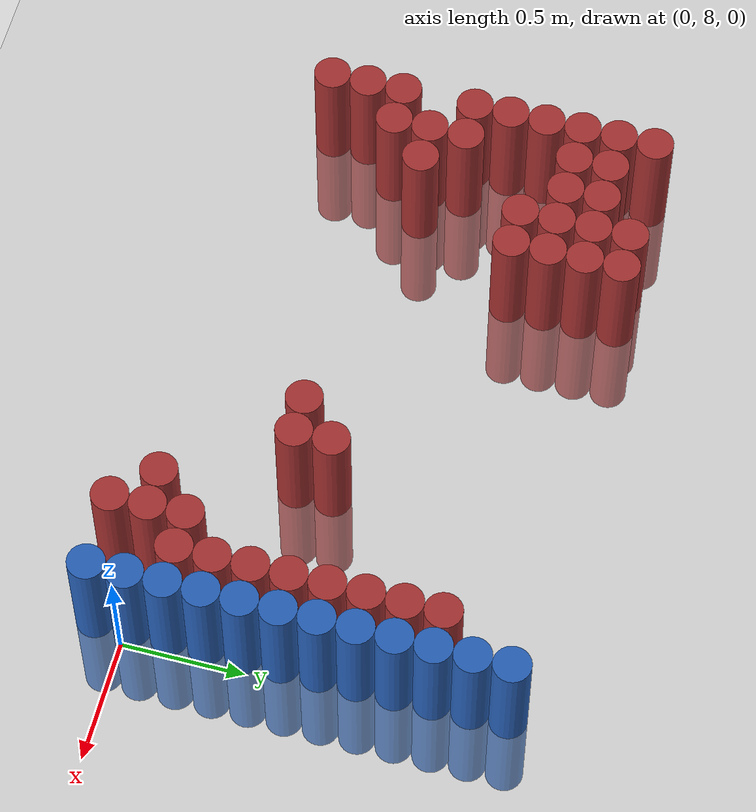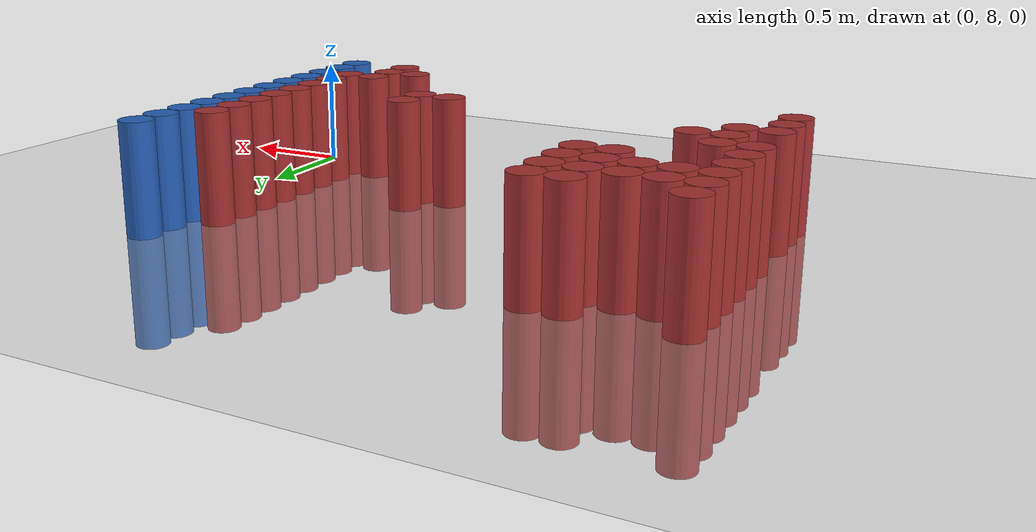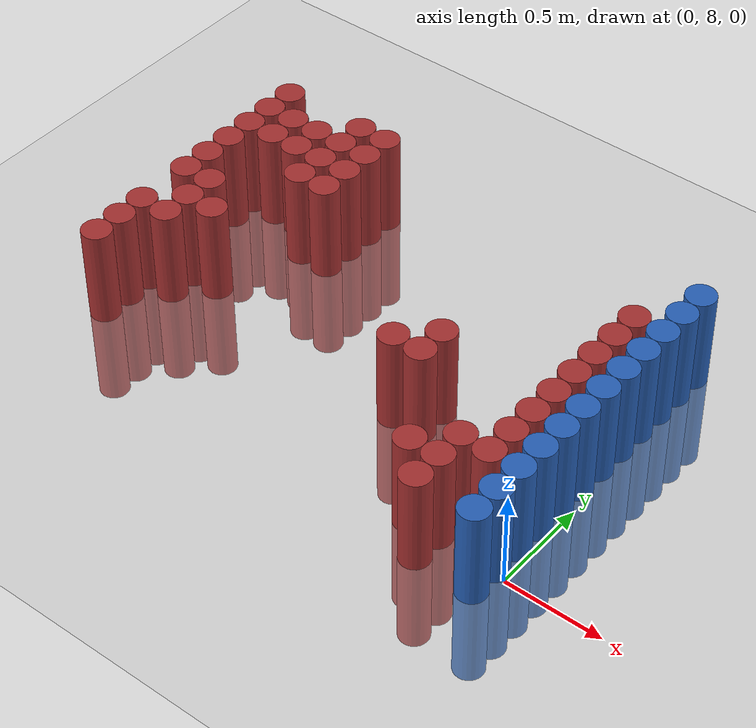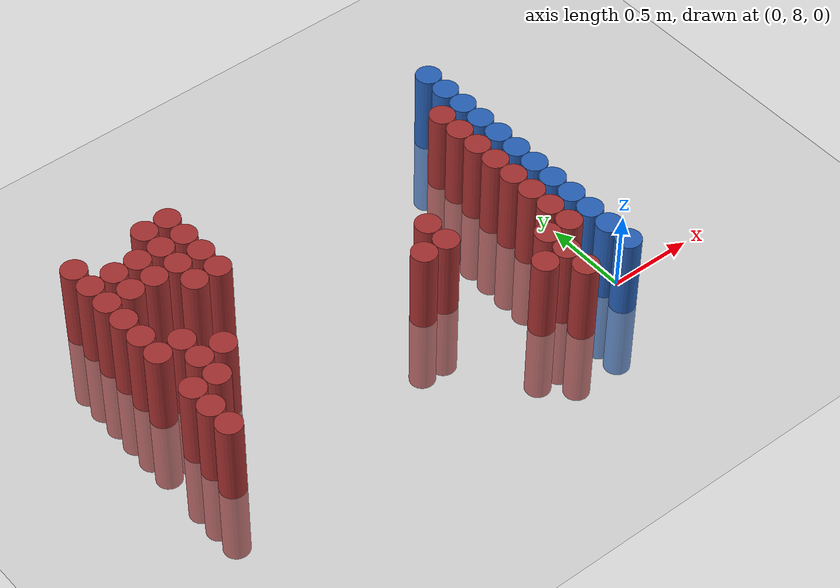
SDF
<sdf version="1.6">
 <world name="default">
  <model name="ground_plane">
   <static>1</static>
   <link name="link">
    <collision name="collision">
     <geometry><plane><normal>0 0 1</normal><size>100 100</size></plane></geometry>
     <surface><friction><ode><mu>100</mu><mu2>50</mu2></ode></friction></surface>
    </collision>
    <visual name="visual">
     <cast_shadows>0</cast_shadows>
     <geometry><plane><normal>0 0 1</normal><size>100 100</size></plane></geometry>
     <material>
      <script><uri>file://media/materials/scripts/gazebo.material</uri><name>Gazebo/Grey</name></script>
     </material>
    </visual>
   </link>
  </model>
  <model name="unit_cylinder_240">
   <static>1</static>
   <pose>-2.475000 8.175000 0.000000 0.000000 0.000000 0.000000</pose>
   <link name="link">
    <inertial>
     <mass>1</mass>
     <inertia><ixx>0.145833</ixx><ixy>0</ixy><ixz>0</ixz><iyy>0.145833</iyy><iyz>0</iyz><izz>0.125</izz></inertia>
    </inertial>
    <collision name="collision">
     <geometry><cylinder><radius>0.075000</radius><length>1</length></cylinder></geometry>
    </collision>
    <visual name="visual">
     <geometry><cylinder><radius>0.075000</radius><length>1</length></cylinder></geometry>
     <material>
      <ambient>0.648000 0.192000 0.192000 1</ambient>
      <diffuse>0.648000 0.192000 0.192000 1</diffuse>
     </material>
     <material>
      <script><name>Gazebo/Grey</name><uri>file://media/materials/scripts/gazebo.material</uri></script>
     </material>
    </visual>
   </link>
  </model>
  <model name="unit_cylinder_241">
   <static>1</static>
   <pose>-2.475000 8.325000 0.000000 0.000000 0.000000 0.000000</pose>
   <link name="link">
    <inertial>
     <mass>1</mass>
     <inertia><ixx>0.145833</ixx><ixy>0</ixy><ixz>0</ixz><iyy>0.145833</iyy><iyz>0</iyz><izz>0.125</izz></inertia>
    </inertial>
    <collision name="collision">
     <geometry><cylinder><radius>0.075000</radius><length>1</length></cylinder></geometry>
    </collision>
    <visual name="visual">
     <geometry><cylinder><radius>0.075000</radius><length>1</length></cylinder></geometry>
     <material>
      <ambient>0.648000 0.192000 0.192000 1</ambient>
      <diffuse>0.648000 0.192000 0.192000 1</diffuse>
     </material>
     <material>
      <script><name>Gazebo/Grey</name><uri>file://media/materials/scripts/gazebo.material</uri></script>
     </material>
    </visual>
   </link>
  </model>
  <model name="unit_cylinder_242">
   <static>1</static>
   <pose>-2.475000 8.475000 0.000000 0.000000 0.000000 0.000000</pose>
   <link name="link">
    <inertial>
     <mass>1</mass>
     <inertia><ixx>0.145833</ixx><ixy>0</ixy><ixz>0</ixz><iyy>0.145833</iyy><iyz>0</iyz><izz>0.125</izz></inertia>
    </inertial>
    <collision name="collision">
     <geometry><cylinder><radius>0.075000</radius><length>1</length></cylinder></geometry>
    </collision>
    <visual name="visual">
     <geometry><cylinder><radius>0.075000</radius><length>1</length></cylinder></geometry>
     <material>
      <ambient>0.648000 0.192000 0.192000 1</ambient>
      <diffuse>0.648000 0.192000 0.192000 1</diffuse>
     </material>
     <material>
      <script><name>Gazebo/Grey</name><uri>file://media/materials/scripts/gazebo.material</uri></script>
     </material>
    </visual>
   </link>
  </model>
  <model name="unit_cylinder_243">
   <static>1</static>
   <pose>-2.475000 8.775000 0.000000 0.000000 0.000000 0.000000</pose>
   <link name="link">
    <inertial>
     <mass>1</mass>
     <inertia><ixx>0.145833</ixx><ixy>0</ixy><ixz>0</ixz><iyy>0.145833</iyy><iyz>0</iyz><izz>0.125</izz></inertia>
    </inertial>
    <collision name="collision">
     <geometry><cylinder><radius>0.075000</radius><length>1</length></cylinder></geometry>
    </collision>
    <visual name="visual">
     <geometry><cylinder><radius>0.075000</radius><length>1</length></cylinder></geometry>
     <material>
      <ambient>0.648000 0.192000 0.192000 1</ambient>
      <diffuse>0.648000 0.192000 0.192000 1</diffuse>
     </material>
     <material>
      <script><name>Gazebo/Grey</name><uri>file://media/materials/scripts/gazebo.material</uri></script>
     </material>
    </visual>
   </link>
  </model>
  <model name="unit_cylinder_244">
   <static>1</static>
   <pose>-2.475000 8.925000 0.000000 0.000000 0.000000 0.000000</pose>
   <link name="link">
    <inertial>
     <mass>1</mass>
     <inertia><ixx>0.145833</ixx><ixy>0</ixy><ixz>0</ixz><iyy>0.145833</iyy><iyz>0</iyz><izz>0.125</izz></inertia>
    </inertial>
    <collision name="collision">
     <geometry><cylinder><radius>0.075000</radius><length>1</length></cylinder></geometry>
    </collision>
    <visual name="visual">
     <geometry><cylinder><radius>0.075000</radius><length>1</length></cylinder></geometry>
     <material>
      <ambient>0.648000 0.192000 0.192000 1</ambient>
      <diffuse>0.648000 0.192000 0.192000 1</diffuse>
     </material>
     <material>
      <script><name>Gazebo/Grey</name><uri>file://media/materials/scripts/gazebo.material</uri></script>
     </material>
    </visual>
   </link>
  </model>
  <model name="unit_cylinder_245">
   <static>1</static>
   <pose>-2.475000 9.075000 0.000000 0.000000 0.000000 0.000000</pose>
   <link name="link">
    <inertial>
     <mass>1</mass>
     <inertia><ixx>0.145833</ixx><ixy>0</ixy><ixz>0</ixz><iyy>0.145833</iyy><iyz>0</iyz><izz>0.125</izz></inertia>
    </inertial>
    <collision name="collision">
     <geometry><cylinder><radius>0.075000</radius><length>1</length></cylinder></geometry>
    </collision>
    <visual name="visual">
     <geometry><cylinder><radius>0.075000</radius><length>1</length></cylinder></geometry>
     <material>
      <ambient>0.648000 0.192000 0.192000 1</ambient>
      <diffuse>0.648000 0.192000 0.192000 1</diffuse>
     </material>
     <material>
      <script><name>Gazebo/Grey</name><uri>file://media/materials/scripts/gazebo.material</uri></script>
     </material>
    </visual>
   </link>
  </model>
  <model name="unit_cylinder_246">
   <static>1</static>
   <pose>-2.475000 9.225000 0.000000 0.000000 0.000000 0.000000</pose>
   <link name="link">
    <inertial>
     <mass>1</mass>
     <inertia><ixx>0.145833</ixx><ixy>0</ixy><ixz>0</ixz><iyy>0.145833</iyy><iyz>0</iyz><izz>0.125</izz></inertia>
    </inertial>
    <collision name="collision">
     <geometry><cylinder><radius>0.075000</radius><length>1</length></cylinder></geometry>
    </collision>
    <visual name="visual">
     <geometry><cylinder><radius>0.075000</radius><length>1</length></cylinder></geometry>
     <material>
      <ambient>0.648000 0.192000 0.192000 1</ambient>
      <diffuse>0.648000 0.192000 0.192000 1</diffuse>
     </material>
     <material>
      <script><name>Gazebo/Grey</name><uri>file://media/materials/scripts/gazebo.material</uri></script>
     </material>
    </visual>
   </link>
  </model>
  <model name="unit_cylinder_247">
   <static>1</static>
   <pose>-2.475000 9.375000 0.000000 0.000000 0.000000 0.000000</pose>
   <link name="link">
    <inertial>
     <mass>1</mass>
     <inertia><ixx>0.145833</ixx><ixy>0</ixy><ixz>0</ixz><iyy>0.145833</iyy><iyz>0</iyz><izz>0.125</izz></inertia>
    </inertial>
    <collision name="collision">
     <geometry><cylinder><radius>0.075000</radius><length>1</length></cylinder></geometry>
    </collision>
    <visual name="visual">
     <geometry><cylinder><radius>0.075000</radius><length>1</length></cylinder></geometry>
     <material>
      <ambient>0.648000 0.192000 0.192000 1</ambient>
      <diffuse>0.648000 0.192000 0.192000 1</diffuse>
     </material>
     <material>
      <script><name>Gazebo/Grey</name><uri>file://media/materials/scripts/gazebo.material</uri></script>
     </material>
    </visual>
   </link>
  </model>
  <model name="unit_cylinder_248">
   <static>1</static>
   <pose>-2.475000 9.525000 0.000000 0.000000 0.000000 0.000000</pose>
   <link name="link">
    <inertial>
     <mass>1</mass>
     <inertia><ixx>0.145833</ixx><ixy>0</ixy><ixz>0</ixz><iyy>0.145833</iyy><iyz>0</iyz><izz>0.125</izz></inertia>
    </inertial>
    <collision name="collision">
     <geometry><cylinder><radius>0.075000</radius><length>1</length></cylinder></geometry>
    </collision>
    <visual name="visual">
     <geometry><cylinder><radius>0.075000</radius><length>1</length></cylinder></geometry>
     <material>
      <ambient>0.648000 0.192000 0.192000 1</ambient>
      <diffuse>0.648000 0.192000 0.192000 1</diffuse>
     </material>
     <material>
      <script><name>Gazebo/Grey</name><uri>file://media/materials/scripts/gazebo.material</uri></script>
     </material>
    </visual>
   </link>
  </model>
  <model name="unit_cylinder_257">
   <static>1</static>
   <pose>-2.325000 8.475000 0.000000 0.000000 0.000000 0.000000</pose>
   <link name="link">
    <inertial>
     <mass>1</mass>
     <inertia><ixx>0.145833</ixx><ixy>0</ixy><ixz>0</ixz><iyy>0.145833</iyy><iyz>0</iyz><izz>0.125</izz></inertia>
    </inertial>
    <collision name="collision">
     <geometry><cylinder><radius>0.075000</radius><length>1</length></cylinder></geometry>
    </collision>
    <visual name="visual">
     <geometry><cylinder><radius>0.075000</radius><length>1</length></cylinder></geometry>
     <material>
      <ambient>0.648000 0.192000 0.192000 1</ambient>
      <diffuse>0.648000 0.192000 0.192000 1</diffuse>
     </material>
     <material>
      <script><name>Gazebo/Grey</name><uri>file://media/materials/scripts/gazebo.material</uri></script>
     </material>
    </visual>
   </link>
  </model>
  <model name="unit_cylinder_258">
   <static>1</static>
   <pose>-2.325000 8.625000 0.000000 0.000000 0.000000 0.000000</pose>
   <link name="link">
    <inertial>
     <mass>1</mass>
     <inertia><ixx>0.145833</ixx><ixy>0</ixy><ixz>0</ixz><iyy>0.145833</iyy><iyz>0</iyz><izz>0.125</izz></inertia>
    </inertial>
    <collision name="collision">
     <geometry><cylinder><radius>0.075000</radius><length>1</length></cylinder></geometry>
    </collision>
    <visual name="visual">
     <geometry><cylinder><radius>0.075000</radius><length>1</length></cylinder></geometry>
     <material>
      <ambient>0.648000 0.192000 0.192000 1</ambient>
      <diffuse>0.648000 0.192000 0.192000 1</diffuse>
     </material>
     <material>
      <script><name>Gazebo/Grey</name><uri>file://media/materials/scripts/gazebo.material</uri></script>
     </material>
    </visual>
   </link>
  </model>
  <model name="unit_cylinder_259">
   <static>1</static>
   <pose>-2.325000 8.775000 0.000000 0.000000 0.000000 0.000000</pose>
   <link name="link">
    <inertial>
     <mass>1</mass>
     <inertia><ixx>0.145833</ixx><ixy>0</ixy><ixz>0</ixz><iyy>0.145833</iyy><iyz>0</iyz><izz>0.125</izz></inertia>
    </inertial>
    <collision name="collision">
     <geometry><cylinder><radius>0.075000</radius><length>1</length></cylinder></geometry>
    </collision>
    <visual name="visual">
     <geometry><cylinder><radius>0.075000</radius><length>1</length></cylinder></geometry>
     <material>
      <ambient>0.648000 0.192000 0.192000 1</ambient>
      <diffuse>0.648000 0.192000 0.192000 1</diffuse>
     </material>
     <material>
      <script><name>Gazebo/Grey</name><uri>file://media/materials/scripts/gazebo.material</uri></script>
     </material>
    </visual>
   </link>
  </model>
  <model name="unit_cylinder_260">
   <static>1</static>
   <pose>-2.325000 9.225000 0.000000 0.000000 0.000000 0.000000</pose>
   <link name="link">
    <inertial>
     <mass>1</mass>
     <inertia><ixx>0.145833</ixx><ixy>0</ixy><ixz>0</ixz><iyy>0.145833</iyy><iyz>0</iyz><izz>0.125</izz></inertia>
    </inertial>
    <collision name="collision">
     <geometry><cylinder><radius>0.075000</radius><length>1</length></cylinder></geometry>
    </collision>
    <visual name="visual">
     <geometry><cylinder><radius>0.075000</radius><length>1</length></cylinder></geometry>
     <material>
      <ambient>0.648000 0.192000 0.192000 1</ambient>
      <diffuse>0.648000 0.192000 0.192000 1</diffuse>
     </material>
     <material>
      <script><name>Gazebo/Grey</name><uri>file://media/materials/scripts/gazebo.material</uri></script>
     </material>
    </visual>
   </link>
  </model>
  <model name="unit_cylinder_261">
   <static>1</static>
   <pose>-2.325000 9.375000 0.000000 0.000000 0.000000 0.000000</pose>
   <link name="link">
    <inertial>
     <mass>1</mass>
     <inertia><ixx>0.145833</ixx><ixy>0</ixy><ixz>0</ixz><iyy>0.145833</iyy><iyz>0</iyz><izz>0.125</izz></inertia>
    </inertial>
    <collision name="collision">
     <geometry><cylinder><radius>0.075000</radius><length>1</length></cylinder></geometry>
    </collision>
    <visual name="visual">
     <geometry><cylinder><radius>0.075000</radius><length>1</length></cylinder></geometry>
     <material>
      <ambient>0.648000 0.192000 0.192000 1</ambient>
      <diffuse>0.648000 0.192000 0.192000 1</diffuse>
     </material>
     <material>
      <script><name>Gazebo/Grey</name><uri>file://media/materials/scripts/gazebo.material</uri></script>
     </material>
    </visual>
   </link>
  </model>
  <model name="unit_cylinder_270">
   <static>1</static>
   <pose>-2.175000 8.625000 0.000000 0.000000 0.000000 0.000000</pose>
   <link name="link">
    <inertial>
     <mass>1</mass>
     <inertia><ixx>0.145833</ixx><ixy>0</ixy><ixz>0</ixz><iyy>0.145833</iyy><iyz>0</iyz><izz>0.125</izz></inertia>
    </inertial>
    <collision name="collision">
     <geometry><cylinder><radius>0.075000</radius><length>1</length></cylinder></geometry>
    </collision>
    <visual name="visual">
     <geometry><cylinder><radius>0.075000</radius><length>1</length></cylinder></geometry>
     <material>
      <ambient>0.648000 0.192000 0.192000 1</ambient>
      <diffuse>0.648000 0.192000 0.192000 1</diffuse>
     </material>
     <material>
      <script><name>Gazebo/Grey</name><uri>file://media/materials/scripts/gazebo.material</uri></script>
     </material>
    </visual>
   </link>
  </model>
  <model name="unit_cylinder_271">
   <static>1</static>
   <pose>-2.175000 9.225000 0.000000 0.000000 0.000000 0.000000</pose>
   <link name="link">
    <inertial>
     <mass>1</mass>
     <inertia><ixx>0.145833</ixx><ixy>0</ixy><ixz>0</ixz><iyy>0.145833</iyy><iyz>0</iyz><izz>0.125</izz></inertia>
    </inertial>
    <collision name="collision">
     <geometry><cylinder><radius>0.075000</radius><length>1</length></cylinder></geometry>
    </collision>
    <visual name="visual">
     <geometry><cylinder><radius>0.075000</radius><length>1</length></cylinder></geometry>
     <material>
      <ambient>0.648000 0.192000 0.192000 1</ambient>
      <diffuse>0.648000 0.192000 0.192000 1</diffuse>
     </material>
     <material>
      <script><name>Gazebo/Grey</name><uri>file://media/materials/scripts/gazebo.material</uri></script>
     </material>
    </visual>
   </link>
  </model>
  <model name="unit_cylinder_272">
   <static>1</static>
   <pose>-2.175000 9.375000 0.000000 0.000000 0.000000 0.000000</pose>
   <link name="link">
    <inertial>
     <mass>1</mass>
     <inertia><ixx>0.145833</ixx><ixy>0</ixy><ixz>0</ixz><iyy>0.145833</iyy><iyz>0</iyz><izz>0.125</izz></inertia>
    </inertial>
    <collision name="collision">
     <geometry><cylinder><radius>0.075000</radius><length>1</length></cylinder></geometry>
    </collision>
    <visual name="visual">
     <geometry><cylinder><radius>0.075000</radius><length>1</length></cylinder></geometry>
     <material>
      <ambient>0.648000 0.192000 0.192000 1</ambient>
      <diffuse>0.648000 0.192000 0.192000 1</diffuse>
     </material>
     <material>
      <script><name>Gazebo/Grey</name><uri>file://media/materials/scripts/gazebo.material</uri></script>
     </material>
    </visual>
   </link>
  </model>
  <model name="unit_cylinder_280">
   <static>1</static>
   <pose>-2.025000 9.075000 0.000000 0.000000 0.000000 0.000000</pose>
   <link name="link">
    <inertial>
     <mass>1</mass>
     <inertia><ixx>0.145833</ixx><ixy>0</ixy><ixz>0</ixz><iyy>0.145833</iyy><iyz>0</iyz><izz>0.125</izz></inertia>
    </inertial>
    <collision name="collision">
     <geometry><cylinder><radius>0.075000</radius><length>1</length></cylinder></geometry>
    </collision>
    <visual name="visual">
     <geometry><cylinder><radius>0.075000</radius><length>1</length></cylinder></geometry>
     <material>
      <ambient>0.648000 0.192000 0.192000 1</ambient>
      <diffuse>0.648000 0.192000 0.192000 1</diffuse>
     </material>
     <material>
      <script><name>Gazebo/Grey</name><uri>file://media/materials/scripts/gazebo.material</uri></script>
     </material>
    </visual>
   </link>
  </model>
  <model name="unit_cylinder_281">
   <static>1</static>
   <pose>-2.025000 9.225000 0.000000 0.000000 0.000000 0.000000</pose>
   <link name="link">
    <inertial>
     <mass>1</mass>
     <inertia><ixx>0.145833</ixx><ixy>0</ixy><ixz>0</ixz><iyy>0.145833</iyy><iyz>0</iyz><izz>0.125</izz></inertia>
    </inertial>
    <collision name="collision">
     <geometry><cylinder><radius>0.075000</radius><length>1</length></cylinder></geometry>
    </collision>
    <visual name="visual">
     <geometry><cylinder><radius>0.075000</radius><length>1</length></cylinder></geometry>
     <material>
      <ambient>0.648000 0.192000 0.192000 1</ambient>
      <diffuse>0.648000 0.192000 0.192000 1</diffuse>
     </material>
     <material>
      <script><name>Gazebo/Grey</name><uri>file://media/materials/scripts/gazebo.material</uri></script>
     </material>
    </visual>
   </link>
  </model>
  <model name="unit_cylinder_282">
   <static>1</static>
   <pose>-2.025000 9.375000 0.000000 0.000000 0.000000 0.000000</pose>
   <link name="link">
    <inertial>
     <mass>1</mass>
     <inertia><ixx>0.145833</ixx><ixy>0</ixy><ixz>0</ixz><iyy>0.145833</iyy><iyz>0</iyz><izz>0.125</izz></inertia>
    </inertial>
    <collision name="collision">
     <geometry><cylinder><radius>0.075000</radius><length>1</length></cylinder></geometry>
    </collision>
    <visual name="visual">
     <geometry><cylinder><radius>0.075000</radius><length>1</length></cylinder></geometry>
     <material>
      <ambient>0.648000 0.192000 0.192000 1</ambient>
      <diffuse>0.648000 0.192000 0.192000 1</diffuse>
     </material>
     <material>
      <script><name>Gazebo/Grey</name><uri>file://media/materials/scripts/gazebo.material</uri></script>
     </material>
    </visual>
   </link>
  </model>
  <model name="unit_cylinder_283">
   <static>1</static>
   <pose>-2.025000 9.525000 0.000000 0.000000 0.000000 0.000000</pose>
   <link name="link">
    <inertial>
     <mass>1</mass>
     <inertia><ixx>0.145833</ixx><ixy>0</ixy><ixz>0</ixz><iyy>0.145833</iyy><iyz>0</iyz><izz>0.125</izz></inertia>
    </inertial>
    <collision name="collision">
     <geometry><cylinder><radius>0.075000</radius><length>1</length></cylinder></geometry>
    </collision>
    <visual name="visual">
     <geometry><cylinder><radius>0.075000</radius><length>1</length></cylinder></geometry>
     <material>
      <ambient>0.648000 0.192000 0.192000 1</ambient>
      <diffuse>0.648000 0.192000 0.192000 1</diffuse>
     </material>
     <material>
      <script><name>Gazebo/Grey</name><uri>file://media/materials/scripts/gazebo.material</uri></script>
     </material>
    </visual>
   </link>
  </model>
  <model name="unit_cylinder_290">
   <static>1</static>
   <pose>-1.875000 9.075000 0.000000 0.000000 0.000000 0.000000</pose>
   <link name="link">
    <inertial>
     <mass>1</mass>
     <inertia><ixx>0.145833</ixx><ixy>0</ixy><ixz>0</ixz><iyy>0.145833</iyy><iyz>0</iyz><izz>0.125</izz></inertia>
    </inertial>
    <collision name="collision">
     <geometry><cylinder><radius>0.075000</radius><length>1</length></cylinder></geometry>
    </collision>
    <visual name="visual">
     <geometry><cylinder><radius>0.075000</radius><length>1</length></cylinder></geometry>
     <material>
      <ambient>0.648000 0.192000 0.192000 1</ambient>
      <diffuse>0.648000 0.192000 0.192000 1</diffuse>
     </material>
     <material>
      <script><name>Gazebo/Grey</name><uri>file://media/materials/scripts/gazebo.material</uri></script>
     </material>
    </visual>
   </link>
  </model>
  <model name="unit_cylinder_291">
   <static>1</static>
   <pose>-1.875000 9.225000 0.000000 0.000000 0.000000 0.000000</pose>
   <link name="link">
    <inertial>
     <mass>1</mass>
     <inertia><ixx>0.145833</ixx><ixy>0</ixy><ixz>0</ixz><iyy>0.145833</iyy><iyz>0</iyz><izz>0.125</izz></inertia>
    </inertial>
    <collision name="collision">
     <geometry><cylinder><radius>0.075000</radius><length>1</length></cylinder></geometry>
    </collision>
    <visual name="visual">
     <geometry><cylinder><radius>0.075000</radius><length>1</length></cylinder></geometry>
     <material>
      <ambient>0.648000 0.192000 0.192000 1</ambient>
      <diffuse>0.648000 0.192000 0.192000 1</diffuse>
     </material>
     <material>
      <script><name>Gazebo/Grey</name><uri>file://media/materials/scripts/gazebo.material</uri></script>
     </material>
    </visual>
   </link>
  </model>
  <model name="unit_cylinder_292">
   <static>1</static>
   <pose>-1.875000 9.375000 0.000000 0.000000 0.000000 0.000000</pose>
   <link name="link">
    <inertial>
     <mass>1</mass>
     <inertia><ixx>0.145833</ixx><ixy>0</ixy><ixz>0</ixz><iyy>0.145833</iyy><iyz>0</iyz><izz>0.125</izz></inertia>
    </inertial>
    <collision name="collision">
     <geometry><cylinder><radius>0.075000</radius><length>1</length></cylinder></geometry>
    </collision>
    <visual name="visual">
     <geometry><cylinder><radius>0.075000</radius><length>1</length></cylinder></geometry>
     <material>
      <ambient>0.648000 0.192000 0.192000 1</ambient>
      <diffuse>0.648000 0.192000 0.192000 1</diffuse>
     </material>
     <material>
      <script><name>Gazebo/Grey</name><uri>file://media/materials/scripts/gazebo.material</uri></script>
     </material>
    </visual>
   </link>
  </model>
  <model name="unit_cylinder_293">
   <static>1</static>
   <pose>-1.875000 9.525000 0.000000 0.000000 0.000000 0.000000</pose>
   <link name="link">
    <inertial>
     <mass>1</mass>
     <inertia><ixx>0.145833</ixx><ixy>0</ixy><ixz>0</ixz><iyy>0.145833</iyy><iyz>0</iyz><izz>0.125</izz></inertia>
    </inertial>
    <collision name="collision">
     <geometry><cylinder><radius>0.075000</radius><length>1</length></cylinder></geometry>
    </collision>
    <visual name="visual">
     <geometry><cylinder><radius>0.075000</radius><length>1</length></cylinder></geometry>
     <material>
      <ambient>0.648000 0.192000 0.192000 1</ambient>
      <diffuse>0.648000 0.192000 0.192000 1</diffuse>
     </material>
     <material>
      <script><name>Gazebo/Grey</name><uri>file://media/materials/scripts/gazebo.material</uri></script>
     </material>
    </visual>
   </link>
  </model>
  <model name="unit_cylinder_296">
   <static>1</static>
   <pose>-0.975000 8.475000 0.000000 0.000000 0.000000 0.000000</pose>
   <link name="link">
    <inertial>
     <mass>1</mass>
     <inertia><ixx>0.145833</ixx><ixy>0</ixy><ixz>0</ixz><iyy>0.145833</iyy><iyz>0</iyz><izz>0.125</izz></inertia>
    </inertial>
    <collision name="collision">
     <geometry><cylinder><radius>0.075000</radius><length>1</length></cylinder></geometry>
    </collision>
    <visual name="visual">
     <geometry><cylinder><radius>0.075000</radius><length>1</length></cylinder></geometry>
     <material>
      <ambient>0.648000 0.192000 0.192000 1</ambient>
      <diffuse>0.648000 0.192000 0.192000 1</diffuse>
     </material>
     <material>
      <script><name>Gazebo/Grey</name><uri>file://media/materials/scripts/gazebo.material</uri></script>
     </material>
    </visual>
   </link>
  </model>
  <model name="unit_cylinder_299">
   <static>1</static>
   <pose>-0.825000 8.475000 0.000000 0.000000 0.000000 0.000000</pose>
   <link name="link">
    <inertial>
     <mass>1</mass>
     <inertia><ixx>0.145833</ixx><ixy>0</ixy><ixz>0</ixz><iyy>0.145833</iyy><iyz>0</iyz><izz>0.125</izz></inertia>
    </inertial>
    <collision name="collision">
     <geometry><cylinder><radius>0.075000</radius><length>1</length></cylinder></geometry>
    </collision>
    <visual name="visual">
     <geometry><cylinder><radius>0.075000</radius><length>1</length></cylinder></geometry>
     <material>
      <ambient>0.648000 0.192000 0.192000 1</ambient>
      <diffuse>0.648000 0.192000 0.192000 1</diffuse>
     </material>
     <material>
      <script><name>Gazebo/Grey</name><uri>file://media/materials/scripts/gazebo.material</uri></script>
     </material>
    </visual>
   </link>
  </model>
  <model name="unit_cylinder_300">
   <static>1</static>
   <pose>-0.825000 8.625000 0.000000 0.000000 0.000000 0.000000</pose>
   <link name="link">
    <inertial>
     <mass>1</mass>
     <inertia><ixx>0.145833</ixx><ixy>0</ixy><ixz>0</ixz><iyy>0.145833</iyy><iyz>0</iyz><izz>0.125</izz></inertia>
    </inertial>
    <collision name="collision">
     <geometry><cylinder><radius>0.075000</radius><length>1</length></cylinder></geometry>
    </collision>
    <visual name="visual">
     <geometry><cylinder><radius>0.075000</radius><length>1</length></cylinder></geometry>
     <material>
      <ambient>0.648000 0.192000 0.192000 1</ambient>
      <diffuse>0.648000 0.192000 0.192000 1</diffuse>
     </material>
     <material>
      <script><name>Gazebo/Grey</name><uri>file://media/materials/scripts/gazebo.material</uri></script>
     </material>
    </visual>
   </link>
  </model>
  <model name="unit_cylinder_309">
   <static>1</static>
   <pose>-0.525000 8.025000 0.000000 0.000000 0.000000 0.000000</pose>
   <link name="link">
    <inertial>
     <mass>1</mass>
     <inertia><ixx>0.145833</ixx><ixy>0</ixy><ixz>0</ixz><iyy>0.145833</iyy><iyz>0</iyz><izz>0.125</izz></inertia>
    </inertial>
    <collision name="collision">
     <geometry><cylinder><radius>0.075000</radius><length>1</length></cylinder></geometry>
    </collision>
    <visual name="visual">
     <geometry><cylinder><radius>0.075000</radius><length>1</length></cylinder></geometry>
     <material>
      <ambient>0.648000 0.192000 0.192000 1</ambient>
      <diffuse>0.648000 0.192000 0.192000 1</diffuse>
     </material>
     <material>
      <script><name>Gazebo/Grey</name><uri>file://media/materials/scripts/gazebo.material</uri></script>
     </material>
    </visual>
   </link>
  </model>
  <model name="unit_cylinder_316">
   <static>1</static>
   <pose>-0.375000 7.875000 0.000000 0.000000 0.000000 0.000000</pose>
   <link name="link">
    <inertial>
     <mass>1</mass>
     <inertia><ixx>0.145833</ixx><ixy>0</ixy><ixz>0</ixz><iyy>0.145833</iyy><iyz>0</iyz><izz>0.125</izz></inertia>
    </inertial>
    <collision name="collision">
     <geometry><cylinder><radius>0.075000</radius><length>1</length></cylinder></geometry>
    </collision>
    <visual name="visual">
     <geometry><cylinder><radius>0.075000</radius><length>1</length></cylinder></geometry>
     <material>
      <ambient>0.648000 0.192000 0.192000 1</ambient>
      <diffuse>0.648000 0.192000 0.192000 1</diffuse>
     </material>
     <material>
      <script><name>Gazebo/Grey</name><uri>file://media/materials/scripts/gazebo.material</uri></script>
     </material>
    </visual>
   </link>
  </model>
  <model name="unit_cylinder_317">
   <static>1</static>
   <pose>-0.375000 8.025000 0.000000 0.000000 0.000000 0.000000</pose>
   <link name="link">
    <inertial>
     <mass>1</mass>
     <inertia><ixx>0.145833</ixx><ixy>0</ixy><ixz>0</ixz><iyy>0.145833</iyy><iyz>0</iyz><izz>0.125</izz></inertia>
    </inertial>
    <collision name="collision">
     <geometry><cylinder><radius>0.075000</radius><length>1</length></cylinder></geometry>
    </collision>
    <visual name="visual">
     <geometry><cylinder><radius>0.075000</radius><length>1</length></cylinder></geometry>
     <material>
      <ambient>0.648000 0.192000 0.192000 1</ambient>
      <diffuse>0.648000 0.192000 0.192000 1</diffuse>
     </material>
     <material>
      <script><name>Gazebo/Grey</name><uri>file://media/materials/scripts/gazebo.material</uri></script>
     </material>
    </visual>
   </link>
  </model>
  <model name="unit_cylinder_318">
   <static>1</static>
   <pose>-0.375000 8.175000 0.000000 0.000000 0.000000 0.000000</pose>
   <link name="link">
    <inertial>
     <mass>1</mass>
     <inertia><ixx>0.145833</ixx><ixy>0</ixy><ixz>0</ixz><iyy>0.145833</iyy><iyz>0</iyz><izz>0.125</izz></inertia>
    </inertial>
    <collision name="collision">
     <geometry><cylinder><radius>0.075000</radius><length>1</length></cylinder></geometry>
    </collision>
    <visual name="visual">
     <geometry><cylinder><radius>0.075000</radius><length>1</length></cylinder></geometry>
     <material>
      <ambient>0.648000 0.192000 0.192000 1</ambient>
      <diffuse>0.648000 0.192000 0.192000 1</diffuse>
     </material>
     <material>
      <script><name>Gazebo/Grey</name><uri>file://media/materials/scripts/gazebo.material</uri></script>
     </material>
    </visual>
   </link>
  </model>
  <model name="unit_cylinder_327">
   <static>1</static>
   <pose>-0.225000 8.175000 0.000000 0.000000 0.000000 0.000000</pose>
   <link name="link">
    <inertial>
     <mass>1</mass>
     <inertia><ixx>0.145833</ixx><ixy>0</ixy><ixz>0</ixz><iyy>0.145833</iyy><iyz>0</iyz><izz>0.125</izz></inertia>
    </inertial>
    <collision name="collision">
     <geometry><cylinder><radius>0.075000</radius><length>1</length></cylinder></geometry>
    </collision>
    <visual name="visual">
     <geometry><cylinder><radius>0.075000</radius><length>1</length></cylinder></geometry>
     <material>
      <ambient>0.648000 0.192000 0.192000 1</ambient>
      <diffuse>0.648000 0.192000 0.192000 1</diffuse>
     </material>
     <material>
      <script><name>Gazebo/Grey</name><uri>file://media/materials/scripts/gazebo.material</uri></script>
     </material>
    </visual>
   </link>
  </model>
  <model name="unit_cylinder_328">
   <static>1</static>
   <pose>-0.225000 8.325000 0.000000 0.000000 0.000000 0.000000</pose>
   <link name="link">
    <inertial>
     <mass>1</mass>
     <inertia><ixx>0.145833</ixx><ixy>0</ixy><ixz>0</ixz><iyy>0.145833</iyy><iyz>0</iyz><izz>0.125</izz></inertia>
    </inertial>
    <collision name="collision">
     <geometry><cylinder><radius>0.075000</radius><length>1</length></cylinder></geometry>
    </collision>
    <visual name="visual">
     <geometry><cylinder><radius>0.075000</radius><length>1</length></cylinder></geometry>
     <material>
      <ambient>0.648000 0.192000 0.192000 1</ambient>
      <diffuse>0.648000 0.192000 0.192000 1</diffuse>
     </material>
     <material>
      <script><name>Gazebo/Grey</name><uri>file://media/materials/scripts/gazebo.material</uri></script>
     </material>
    </visual>
   </link>
  </model>
  <model name="unit_cylinder_329">
   <static>1</static>
   <pose>-0.225000 8.475000 0.000000 0.000000 0.000000 0.000000</pose>
   <link name="link">
    <inertial>
     <mass>1</mass>
     <inertia><ixx>0.145833</ixx><ixy>0</ixy><ixz>0</ixz><iyy>0.145833</iyy><iyz>0</iyz><izz>0.125</izz></inertia>
    </inertial>
    <collision name="collision">
     <geometry><cylinder><radius>0.075000</radius><length>1</length></cylinder></geometry>
    </collision>
    <visual name="visual">
     <geometry><cylinder><radius>0.075000</radius><length>1</length></cylinder></geometry>
     <material>
      <ambient>0.648000 0.192000 0.192000 1</ambient>
      <diffuse>0.648000 0.192000 0.192000 1</diffuse>
     </material>
     <material>
      <script><name>Gazebo/Grey</name><uri>file://media/materials/scripts/gazebo.material</uri></script>
     </material>
    </visual>
   </link>
  </model>
  <model name="unit_cylinder_330">
   <static>1</static>
   <pose>-0.225000 8.625000 0.000000 0.000000 0.000000 0.000000</pose>
   <link name="link">
    <inertial>
     <mass>1</mass>
     <inertia><ixx>0.145833</ixx><ixy>0</ixy><ixz>0</ixz><iyy>0.145833</iyy><iyz>0</iyz><izz>0.125</izz></inertia>
    </inertial>
    <collision name="collision">
     <geometry><cylinder><radius>0.075000</radius><length>1</length></cylinder></geometry>
    </collision>
    <visual name="visual">
     <geometry><cylinder><radius>0.075000</radius><length>1</length></cylinder></geometry>
     <material>
      <ambient>0.648000 0.192000 0.192000 1</ambient>
      <diffuse>0.648000 0.192000 0.192000 1</diffuse>
     </material>
     <material>
      <script><name>Gazebo/Grey</name><uri>file://media/materials/scripts/gazebo.material</uri></script>
     </material>
    </visual>
   </link>
  </model>
  <model name="unit_cylinder_331">
   <static>1</static>
   <pose>-0.225000 8.775000 0.000000 0.000000 0.000000 0.000000</pose>
   <link name="link">
    <inertial>
     <mass>1</mass>
     <inertia><ixx>0.145833</ixx><ixy>0</ixy><ixz>0</ixz><iyy>0.145833</iyy><iyz>0</iyz><izz>0.125</izz></inertia>
    </inertial>
    <collision name="collision">
     <geometry><cylinder><radius>0.075000</radius><length>1</length></cylinder></geometry>
    </collision>
    <visual name="visual">
     <geometry><cylinder><radius>0.075000</radius><length>1</length></cylinder></geometry>
     <material>
      <ambient>0.648000 0.192000 0.192000 1</ambient>
      <diffuse>0.648000 0.192000 0.192000 1</diffuse>
     </material>
     <material>
      <script><name>Gazebo/Grey</name><uri>file://media/materials/scripts/gazebo.material</uri></script>
     </material>
    </visual>
   </link>
  </model>
  <model name="unit_cylinder_332">
   <static>1</static>
   <pose>-0.225000 8.925000 0.000000 0.000000 0.000000 0.000000</pose>
   <link name="link">
    <inertial>
     <mass>1</mass>
     <inertia><ixx>0.145833</ixx><ixy>0</ixy><ixz>0</ixz><iyy>0.145833</iyy><iyz>0</iyz><izz>0.125</izz></inertia>
    </inertial>
    <collision name="collision">
     <geometry><cylinder><radius>0.075000</radius><length>1</length></cylinder></geometry>
    </collision>
    <visual name="visual">
     <geometry><cylinder><radius>0.075000</radius><length>1</length></cylinder></geometry>
     <material>
      <ambient>0.648000 0.192000 0.192000 1</ambient>
      <diffuse>0.648000 0.192000 0.192000 1</diffuse>
     </material>
     <material>
      <script><name>Gazebo/Grey</name><uri>file://media/materials/scripts/gazebo.material</uri></script>
     </material>
    </visual>
   </link>
  </model>
  <model name="unit_cylinder_333">
   <static>1</static>
   <pose>-0.225000 9.075000 0.000000 0.000000 0.000000 0.000000</pose>
   <link name="link">
    <inertial>
     <mass>1</mass>
     <inertia><ixx>0.145833</ixx><ixy>0</ixy><ixz>0</ixz><iyy>0.145833</iyy><iyz>0</iyz><izz>0.125</izz></inertia>
    </inertial>
    <collision name="collision">
     <geometry><cylinder><radius>0.075000</radius><length>1</length></cylinder></geometry>
    </collision>
    <visual name="visual">
     <geometry><cylinder><radius>0.075000</radius><length>1</length></cylinder></geometry>
     <material>
      <ambient>0.648000 0.192000 0.192000 1</ambient>
      <diffuse>0.648000 0.192000 0.192000 1</diffuse>
     </material>
     <material>
      <script><name>Gazebo/Grey</name><uri>file://media/materials/scripts/gazebo.material</uri></script>
     </material>
    </visual>
   </link>
  </model>
  <model name="unit_cylinder_334">
   <static>1</static>
   <pose>-0.225000 9.225000 0.000000 0.000000 0.000000 0.000000</pose>
   <link name="link">
    <inertial>
     <mass>1</mass>
     <inertia><ixx>0.145833</ixx><ixy>0</ixy><ixz>0</ixz><iyy>0.145833</iyy><iyz>0</iyz><izz>0.125</izz></inertia>
    </inertial>
    <collision name="collision">
     <geometry><cylinder><radius>0.075000</radius><length>1</length></cylinder></geometry>
    </collision>
    <visual name="visual">
     <geometry><cylinder><radius>0.075000</radius><length>1</length></cylinder></geometry>
     <material>
      <ambient>0.648000 0.192000 0.192000 1</ambient>
      <diffuse>0.648000 0.192000 0.192000 1</diffuse>
     </material>
     <material>
      <script><name>Gazebo/Grey</name><uri>file://media/materials/scripts/gazebo.material</uri></script>
     </material>
    </visual>
   </link>
  </model>
  <model name="unit_cylinder_353">
   <static>1</static>
   <pose>-0.075000 7.875000 0.000000 0.000000 0.000000 0.000000</pose>
   <link name="link">
    <inertial>
     <mass>1</mass>
     <inertia><ixx>0.145833</ixx><ixy>0</ixy><ixz>0</ixz><iyy>0.145833</iyy><iyz>0</iyz><izz>0.125</izz></inertia>
    </inertial>
    <collision name="collision">
     <geometry><cylinder><radius>0.075000</radius><length>1</length></cylinder></geometry>
    </collision>
    <visual name="visual">
     <geometry><cylinder><radius>0.075000</radius><length>1</length></cylinder></geometry>
     <material>
      <ambient>0.152000 0.379000 0.720000 1</ambient>
      <diffuse>0.152000 0.379000 0.720000 1</diffuse>
     </material>
     <material>
      <script><name>Gazebo/Grey</name><uri>file://media/materials/scripts/gazebo.material</uri></script>
     </material>
    </visual>
   </link>
  </model>
  <model name="unit_cylinder_354">
   <static>1</static>
   <pose>-0.075000 8.025000 0.000000 0.000000 0.000000 0.000000</pose>
   <link name="link">
    <inertial>
     <mass>1</mass>
     <inertia><ixx>0.145833</ixx><ixy>0</ixy><ixz>0</ixz><iyy>0.145833</iyy><iyz>0</iyz><izz>0.125</izz></inertia>
    </inertial>
    <collision name="collision">
     <geometry><cylinder><radius>0.075000</radius><length>1</length></cylinder></geometry>
    </collision>
    <visual name="visual">
     <geometry><cylinder><radius>0.075000</radius><length>1</length></cylinder></geometry>
     <material>
      <ambient>0.152000 0.379000 0.720000 1</ambient>
      <diffuse>0.152000 0.379000 0.720000 1</diffuse>
     </material>
     <material>
      <script><name>Gazebo/Grey</name><uri>file://media/materials/scripts/gazebo.material</uri></script>
     </material>
    </visual>
   </link>
  </model>
  <model name="unit_cylinder_355">
   <static>1</static>
   <pose>-0.075000 8.175000 0.000000 0.000000 0.000000 0.000000</pose>
   <link name="link">
    <inertial>
     <mass>1</mass>
     <inertia><ixx>0.145833</ixx><ixy>0</ixy><ixz>0</ixz><iyy>0.145833</iyy><iyz>0</iyz><izz>0.125</izz></inertia>
    </inertial>
    <collision name="collision">
     <geometry><cylinder><radius>0.075000</radius><length>1</length></cylinder></geometry>
    </collision>
    <visual name="visual">
     <geometry><cylinder><radius>0.075000</radius><length>1</length></cylinder></geometry>
     <material>
      <ambient>0.152000 0.379000 0.720000 1</ambient>
      <diffuse>0.152000 0.379000 0.720000 1</diffuse>
     </material>
     <material>
      <script><name>Gazebo/Grey</name><uri>file://media/materials/scripts/gazebo.material</uri></script>
     </material>
    </visual>
   </link>
  </model>
  <model name="unit_cylinder_356">
   <static>1</static>
   <pose>-0.075000 8.325000 0.000000 0.000000 0.000000 0.000000</pose>
   <link name="link">
    <inertial>
     <mass>1</mass>
     <inertia><ixx>0.145833</ixx><ixy>0</ixy><ixz>0</ixz><iyy>0.145833</iyy><iyz>0</iyz><izz>0.125</izz></inertia>
    </inertial>
    <collision name="collision">
     <geometry><cylinder><radius>0.075000</radius><length>1</length></cylinder></geometry>
    </collision>
    <visual name="visual">
     <geometry><cylinder><radius>0.075000</radius><length>1</length></cylinder></geometry>
     <material>
      <ambient>0.152000 0.379000 0.720000 1</ambient>
      <diffuse>0.152000 0.379000 0.720000 1</diffuse>
     </material>
     <material>
      <script><name>Gazebo/Grey</name><uri>file://media/materials/scripts/gazebo.material</uri></script>
     </material>
    </visual>
   </link>
  </model>
  <model name="unit_cylinder_357">
   <static>1</static>
   <pose>-0.075000 8.475000 0.000000 0.000000 0.000000 0.000000</pose>
   <link name="link">
    <inertial>
     <mass>1</mass>
     <inertia><ixx>0.145833</ixx><ixy>0</ixy><ixz>0</ixz><iyy>0.145833</iyy><iyz>0</iyz><izz>0.125</izz></inertia>
    </inertial>
    <collision name="collision">
     <geometry><cylinder><radius>0.075000</radius><length>1</length></cylinder></geometry>
    </collision>
    <visual name="visual">
     <geometry><cylinder><radius>0.075000</radius><length>1</length></cylinder></geometry>
     <material>
      <ambient>0.152000 0.379000 0.720000 1</ambient>
      <diffuse>0.152000 0.379000 0.720000 1</diffuse>
     </material>
     <material>
      <script><name>Gazebo/Grey</name><uri>file://media/materials/scripts/gazebo.material</uri></script>
     </material>
    </visual>
   </link>
  </model>
  <model name="unit_cylinder_358">
   <static>1</static>
   <pose>-0.075000 8.625000 0.000000 0.000000 0.000000 0.000000</pose>
   <link name="link">
    <inertial>
     <mass>1</mass>
     <inertia><ixx>0.145833</ixx><ixy>0</ixy><ixz>0</ixz><iyy>0.145833</iyy><iyz>0</iyz><izz>0.125</izz></inertia>
    </inertial>
    <collision name="collision">
     <geometry><cylinder><radius>0.075000</radius><length>1</length></cylinder></geometry>
    </collision>
    <visual name="visual">
     <geometry><cylinder><radius>0.075000</radius><length>1</length></cylinder></geometry>
     <material>
      <ambient>0.152000 0.379000 0.720000 1</ambient>
      <diffuse>0.152000 0.379000 0.720000 1</diffuse>
     </material>
     <material>
      <script><name>Gazebo/Grey</name><uri>file://media/materials/scripts/gazebo.material</uri></script>
     </material>
    </visual>
   </link>
  </model>
  <model name="unit_cylinder_359">
   <static>1</static>
   <pose>-0.075000 8.775000 0.000000 0.000000 0.000000 0.000000</pose>
   <link name="link">
    <inertial>
     <mass>1</mass>
     <inertia><ixx>0.145833</ixx><ixy>0</ixy><ixz>0</ixz><iyy>0.145833</iyy><iyz>0</iyz><izz>0.125</izz></inertia>
    </inertial>
    <collision name="collision">
     <geometry><cylinder><radius>0.075000</radius><length>1</length></cylinder></geometry>
    </collision>
    <visual name="visual">
     <geometry><cylinder><radius>0.075000</radius><length>1</length></cylinder></geometry>
     <material>
      <ambient>0.152000 0.379000 0.720000 1</ambient>
      <diffuse>0.152000 0.379000 0.720000 1</diffuse>
     </material>
     <material>
      <script><name>Gazebo/Grey</name><uri>file://media/materials/scripts/gazebo.material</uri></script>
     </material>
    </visual>
   </link>
  </model>
  <model name="unit_cylinder_360">
   <static>1</static>
   <pose>-0.075000 8.925000 0.000000 0.000000 0.000000 0.000000</pose>
   <link name="link">
    <inertial>
     <mass>1</mass>
     <inertia><ixx>0.145833</ixx><ixy>0</ixy><ixz>0</ixz><iyy>0.145833</iyy><iyz>0</iyz><izz>0.125</izz></inertia>
    </inertial>
    <collision name="collision">
     <geometry><cylinder><radius>0.075000</radius><length>1</length></cylinder></geometry>
    </collision>
    <visual name="visual">
     <geometry><cylinder><radius>0.075000</radius><length>1</length></cylinder></geometry>
     <material>
      <ambient>0.152000 0.379000 0.720000 1</ambient>
      <diffuse>0.152000 0.379000 0.720000 1</diffuse>
     </material>
     <material>
      <script><name>Gazebo/Grey</name><uri>file://media/materials/scripts/gazebo.material</uri></script>
     </material>
    </visual>
   </link>
  </model>
  <model name="unit_cylinder_361">
   <static>1</static>
   <pose>-0.075000 9.075000 0.000000 0.000000 0.000000 0.000000</pose>
   <link name="link">
    <inertial>
     <mass>1</mass>
     <inertia><ixx>0.145833</ixx><ixy>0</ixy><ixz>0</ixz><iyy>0.145833</iyy><iyz>0</iyz><izz>0.125</izz></inertia>
    </inertial>
    <collision name="collision">
     <geometry><cylinder><radius>0.075000</radius><length>1</length></cylinder></geometry>
    </collision>
    <visual name="visual">
     <geometry><cylinder><radius>0.075000</radius><length>1</length></cylinder></geometry>
     <material>
      <ambient>0.152000 0.379000 0.720000 1</ambient>
      <diffuse>0.152000 0.379000 0.720000 1</diffuse>
     </material>
     <material>
      <script><name>Gazebo/Grey</name><uri>file://media/materials/scripts/gazebo.material</uri></script>
     </material>
    </visual>
   </link>
  </model>
  <model name="unit_cylinder_362">
   <static>1</static>
   <pose>-0.075000 9.225000 0.000000 0.000000 0.000000 0.000000</pose>
   <link name="link">
    <inertial>
     <mass>1</mass>
     <inertia><ixx>0.145833</ixx><ixy>0</ixy><ixz>0</ixz><iyy>0.145833</iyy><iyz>0</iyz><izz>0.125</izz></inertia>
    </inertial>
    <collision name="collision">
     <geometry><cylinder><radius>0.075000</radius><length>1</length></cylinder></geometry>
    </collision>
    <visual name="visual">
     <geometry><cylinder><radius>0.075000</radius><length>1</length></cylinder></geometry>
     <material>
      <ambient>0.152000 0.379000 0.720000 1</ambient>
      <diffuse>0.152000 0.379000 0.720000 1</diffuse>
     </material>
     <material>
      <script><name>Gazebo/Grey</name><uri>file://media/materials/scripts/gazebo.material</uri></script>
     </material>
    </visual>
   </link>
  </model>
  <model name="unit_cylinder_363">
   <static>1</static>
   <pose>-0.075000 9.375000 0.000000 0.000000 0.000000 0.000000</pose>
   <link name="link">
    <inertial>
     <mass>1</mass>
     <inertia><ixx>0.145833</ixx><ixy>0</ixy><ixz>0</ixz><iyy>0.145833</iyy><iyz>0</iyz><izz>0.125</izz></inertia>
    </inertial>
    <collision name="collision">
     <geometry><cylinder><radius>0.075000</radius><length>1</length></cylinder></geometry>
    </collision>
    <visual name="visual">
     <geometry><cylinder><radius>0.075000</radius><length>1</length></cylinder></geometry>
     <material>
      <ambient>0.152000 0.379000 0.720000 1</ambient>
      <diffuse>0.152000 0.379000 0.720000 1</diffuse>
     </material>
     <material>
      <script><name>Gazebo/Grey</name><uri>file://media/materials/scripts/gazebo.material</uri></script>
     </material>
    </visual>
   </link>
  </model>
  <model name="unit_cylinder_364">
   <static>1</static>
   <pose>-0.075000 9.525000 0.000000 0.000000 0.000000 0.000000</pose>
   <link name="link">
    <inertial>
     <mass>1</mass>
     <inertia><ixx>0.145833</ixx><ixy>0</ixy><ixz>0</ixz><iyy>0.145833</iyy><iyz>0</iyz><izz>0.125</izz></inertia>
    </inertial>
    <collision name="collision">
     <geometry><cylinder><radius>0.075000</radius><length>1</length></cylinder></geometry>
    </collision>
    <visual name="visual">
     <geometry><cylinder><radius>0.075000</radius><length>1</length></cylinder></geometry>
     <material>
      <ambient>0.152000 0.379000 0.720000 1</ambient>
      <diffuse>0.152000 0.379000 0.720000 1</diffuse>
     </material>
     <material>
      <script><name>Gazebo/Grey</name><uri>file://media/materials/scripts/gazebo.material</uri></script>
     </material>
    </visual>
   </link>
  </model>
 </world>
</sdf>
